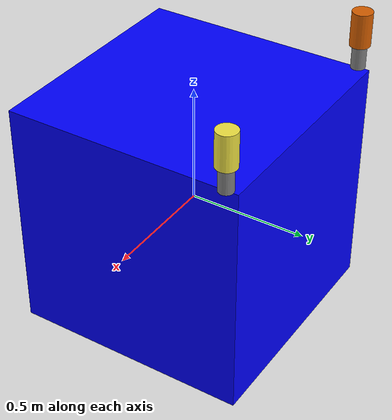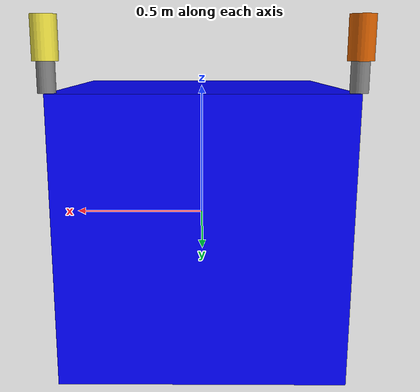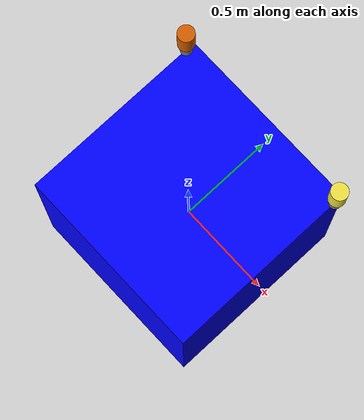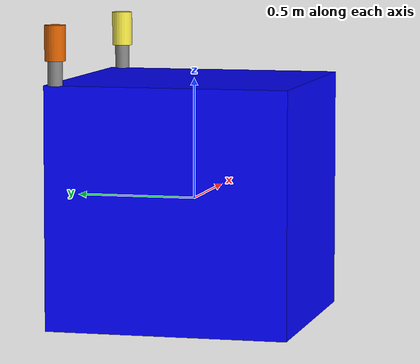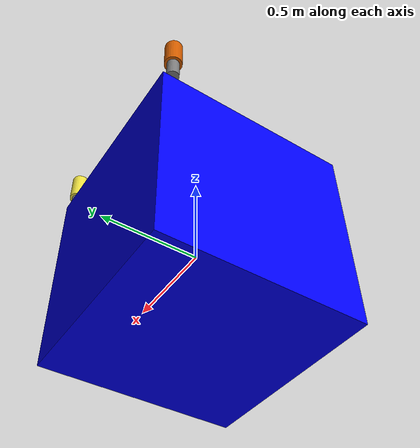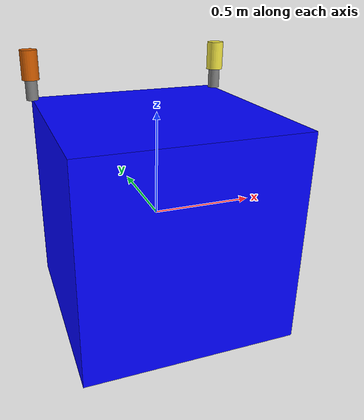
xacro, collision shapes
<?xml version="1.0"?>
<robot xmlns:xacro="http://www.ros.org/wiki/xacro" name="my_robot">

  <!-- 定义1x1x1的正方体作为base_link -->
  <link name="base_link">
    <visual>
      <geometry>
        <box size="1 1 1"/>
      </geometry>
      <material name="blue">
        <color rgba="0.0 0.0 1.0 1.0"/>
      </material>
    </visual>
    <collision>
      <geometry>
        <box size="1 1 1"/>
      </geometry>
    </collision>
    <inertial>
      <mass value="1.0"/>
      <inertia ixx="0.083" ixy="0.0" ixz="0.0" iyy="0.083" iyz="0.0" izz="0.083"/>
    </inertial>
  </link>

  <!-- 定义第一个圆柱体作为雷达的支撑 -->
  <link name="cylinder_link1">
    <visual>
      <geometry>
        <cylinder length="0.1" radius="0.03"/> <!-- 调整长度和半径以符合您的需求 -->
      </geometry>
      <material name="gray">
        <color rgba="0.5 0.5 0.5 1.0"/> <!-- 灰色材质 -->
      </material>
    </visual>
    <collision>
      <geometry>
        <cylinder length="0.1" radius="0.03"/>
      </geometry>
    </collision>
    <inertial>
      <!-- 您需要为此链接定义适当的惯性属性 -->
      <mass value="0.1"/>
      <inertia ixx="0.001" ixy="0.0" ixz="0.0" iyy="0.001" iyz="0.0" izz="0.002"/>
    </inertial>
  </link>

  <!-- 定义第二个圆柱体作为雷达的支撑 -->
  <link name="cylinder_link2">
    <visual>
      <geometry>
        <cylinder length="0.1" radius="0.03"/> <!-- 调整长度和半径以符合您的需求 -->
      </geometry>
      <material name="gray">
        <color rgba="0.5 0.5 0.5 1.0"/> <!-- 灰色材质 -->
      </material>
    </visual>
    <collision>
      <geometry>
        <cylinder length="0.1" radius="0.03"/>
      </geometry>
    </collision>
    <inertial>
      <!-- 您需要为此链接定义适当的惯性属性 -->
      <mass value="0.1"/>
      <inertia ixx="0.001" ixy="0.0" ixz="0.0" iyy="0.001" iyz="0.0" izz="0.002"/>
    </inertial>
  </link>

 <!-- 将圆柱体连接到base_link -->
  <joint name="cylinder_joint1" type="fixed">
    <parent link="base_link"/>
    <child link="cylinder_link1"/>
    <origin xyz="0.5 0.45 0.55" rpy="0 0 0"/> <!-- 调整位置以符合您的需求 -->
  </joint>

  <joint name="cylinder_joint2" type="fixed">
    <parent link="base_link"/>
    <child link="cylinder_link2"/>
    <origin xyz="-0.5 0.45 0.55" rpy="0 0 0"/> <!-- 调整位置以符合您的需求 -->
  </joint>

    <!-- 导入Velodyne VLP-16雷达的宏定义 -->
  <xacro:include filename="$(find velodyne_description)/urdf/HDL-32E.urdf.xacro" />
  <!-- HDL-32E.urdf -->

  <!-- 放置第一个VLP-16雷达 -->
  <xacro:HDL-32E parent="cylinder_link1" name="velodyne1" topic="/points_raw1" hz="10" samples="775" lasers="500" gpu="true">
    <origin xyz="0 0 0.05" rpy="0 0 0" /> <!-- 修改这里的xyz和rpy以改变雷达的位置和朝向 -->
  </xacro:HDL-32E>

  <!-- 放置第二个VLP-16雷达 -->
  <xacro:HDL-32E parent="cylinder_link2" name="velodyne2" topic="/points_raw2" hz="10" samples="775" lasers="500" gpu="true">
    <origin xyz="0 0 0.05" rpy="0 0 0" /> <!-- 修改这里的xyz和rpy以改变雷达的位置和朝向 -->
  </xacro:HDL-32E>

</robot>

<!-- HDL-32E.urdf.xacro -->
<robot xmlns:xacro="http://www.ros.org/wiki/xacro" name="HDL-32E">
  <xacro:property name="M_PI" value="3.1415926535897931" />
  <xacro:macro name="HDL-32E" params="*origin parent:=base_link name:=velodyne tf_prefix:='' topic:=/velodyne_points organize_cloud:=false hz:=10 lasers:=32 samples:=2187 collision_range:=0.3 min_range:=0.9 max_range:=130.0 noise:=0.008 min_angle:=-${M_PI} max_angle:=${M_PI} gpu:=false">

    <joint name="${name}_base_mount_joint" type="fixed">
      <xacro:insert_block name="origin" />
      <parent link="${parent}"/>
      <child link="${name}_base_link"/>
    </joint>

    <link name="${name}_base_link">
      <inertial>
        <mass value="1.0"/>
        <origin xyz="0 0 0.07212"/>
        <inertia ixx="${(1.0 * (3.0*0.04267*0.04267 + 0.14424*0.14424)) / 12.0}" ixy="0" ixz="0"
          iyy="${(1.0 * (3.0*0.04267*0.04267 + 0.14424*0.14424)) / 12.0}" iyz="0"
          izz="${0.5 * 1.0 * (0.04267*0.04267)}"/>
      </inertial>
      <visual>
        <geometry>
          <mesh filename="package://velodyne_description/meshes/HDL32E_base.dae" />
        </geometry>
      </visual>
      <collision>
        <origin rpy="0 0 0" xyz="0 0 0.07212"/>
        <geometry>
          <cylinder radius="0.04267" length="0.14424"/>
        </geometry>
      </collision>
    </link>

    <joint name="${name}_base_scan_joint" type="fixed" >
      <origin xyz="0 0 0.09081" rpy="0 0 0" />
      <parent link="${name}_base_link" />
      <child link="${name}"/>
    </joint>

    <link name="${name}">
      <inertial>
        <mass value="0.01"/>
        <origin xyz="0 0 0"/>
        <inertia ixx="1e-7" ixy="0" ixz="0" iyy="1e-7" iyz="0" izz="1e-7"/>
      </inertial>
      <visual>
        <origin xyz="0 0 -0.09081" rpy="0 0 0" />
        <geometry>
          <mesh filename="package://velodyne_description/meshes/HDL32E_scan.dae" />
        </geometry>
      </visual>
      <collision>
        <geometry>
          <sphere radius="0"/>
        </geometry>
      </collision>
    </link>

    <!-- Gazebo requires the velodyne_gazebo_plugins package -->
    <gazebo reference="${name}">
      <xacro:if value="${gpu}">
        <sensor type="gpu_ray" name="${name}-HDL32E">
          <pose>0 0 0 0 0 0</pose>
          <visualize>false</visualize>
          <update_rate>${hz}</update_rate>
          <ray>
            <scan>
              <horizontal>
                <samples>${samples}</samples>
                <resolution>1</resolution>
                <min_angle>${min_angle}</min_angle>
                <max_angle>${max_angle}</max_angle>
              </horizontal>
              <vertical>
                <samples>${lasers}</samples>
                <resolution>1</resolution>
                <min_angle>-${5.0*M_PI/180.0}</min_angle>
                <max_angle> ${85.0*M_PI/180.0}</max_angle>
              </vertical>
            </scan>
            <range>
              <min>${collision_range}</min>
              <max>${max_range+1}</max>
              <resolution>0.001</resolution>
            </range>
            <noise>
              <type>gaussian</type>
              <mean>0.0</mean>
              <stddev>0.0</stddev>
            </noise>
          </ray>
          <plugin name="gazebo_ros_laser_controller" filename="libgazebo_ros_velodyne_laser.so">
            <ros>
              <namespace>/${name}</namespace>
              <remapping>~/out:=${topic}</remapping>
            </ros>
            <tf_prefix>${tf_prefix}</tf_prefix>
            <frame_name>${name}</frame_name>
            <organize_cloud>${organize_cloud}</organize_cloud>
            <min_range>${min_range}</min_range>
            <max_range>${max_range}</max_range>
            <gaussian_noise>${noise}</gaussian_noise>
          </plugin>
        </sensor>
      </xacro:if>
      <xacro:unless value="${gpu}">
        <sensor type="ray" name="${name}-HDL32E">
          <pose>0 0 0 0 0 0</pose>
          <visualize>false</visualize>
          <update_rate>${hz}</update_rate>
          <ray>
            <scan>
              <horizontal>
                <samples>${samples}</samples>
                <resolution>1</resolution>
                <min_angle>${min_angle}</min_angle>
                <max_angle>${max_angle}</max_angle>
              </horizontal>
              <vertical>
                <samples>${lasers}</samples>
                <resolution>1</resolution>
                <min_angle>-${5.0*M_PI/180.0}</min_angle>
                <max_angle> ${85.0*M_PI/180.0}</max_angle>
              </vertical>
            </scan>
            <range>
              <min>${collision_range}</min>
              <max>${max_range+1}</max>
              <resolution>0.001</resolution>
            </range>
            <noise>
              <type>gaussian</type>
              <mean>0.0</mean>
              <stddev>0.0</stddev>
            </noise>
          </ray>
          <plugin name="gazebo_ros_laser_controller" filename="libgazebo_ros_velodyne_laser.so">
            <ros>
              <namespace>/${name}</namespace>
              <remapping>~/out:=${topic}</remapping>
            </ros>
            <tf_prefix>${tf_prefix}</tf_prefix>
            <frame_name>${name}</frame_name>
            <organize_cloud>${organize_cloud}</organize_cloud>
            <min_range>${min_range}</min_range>
            <max_range>${max_range}</max_range>
            <gaussian_noise>${noise}</gaussian_noise>
          </plugin>
        </sensor>
      </xacro:unless>
    </gazebo>

  </xacro:macro>
</robot>
